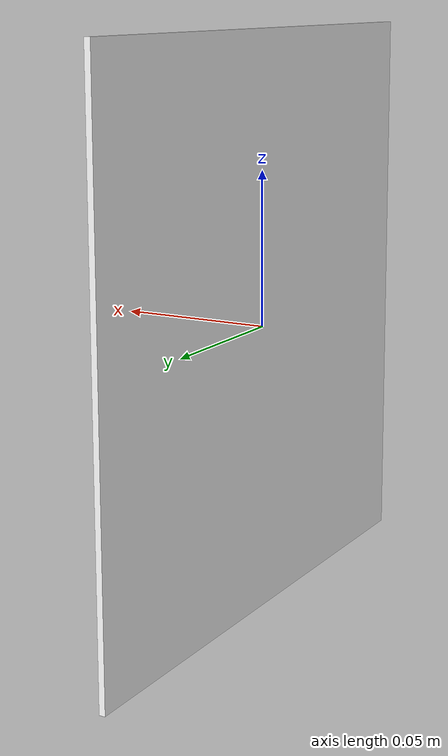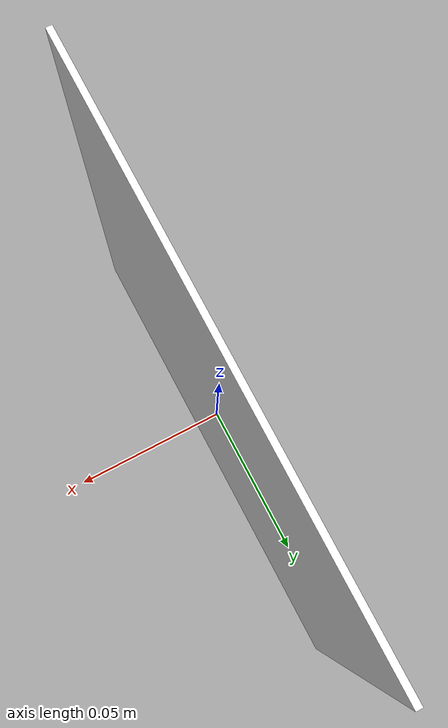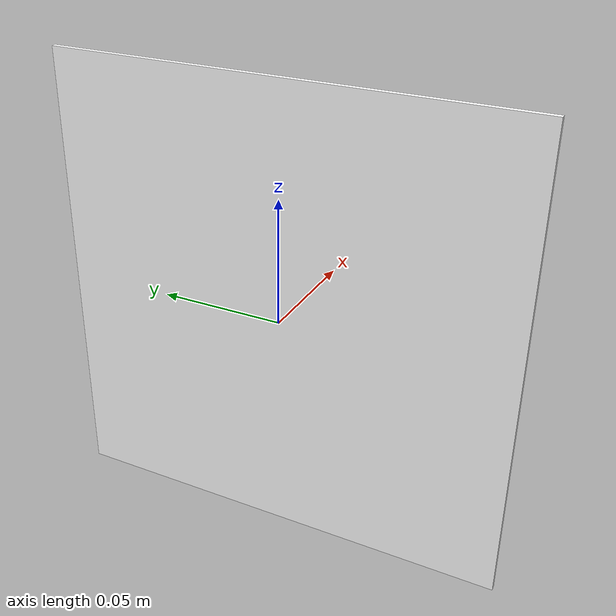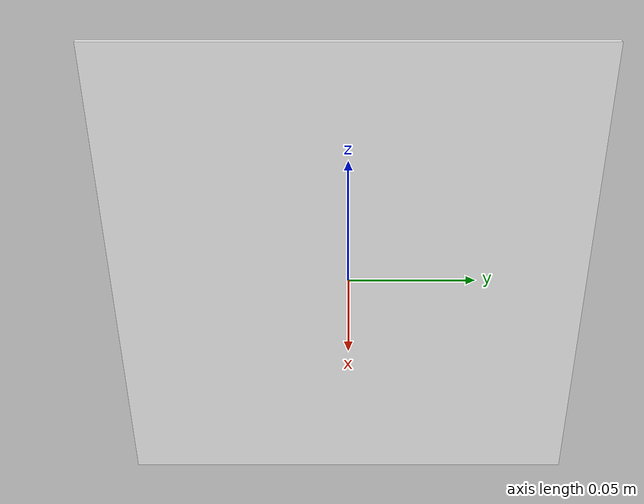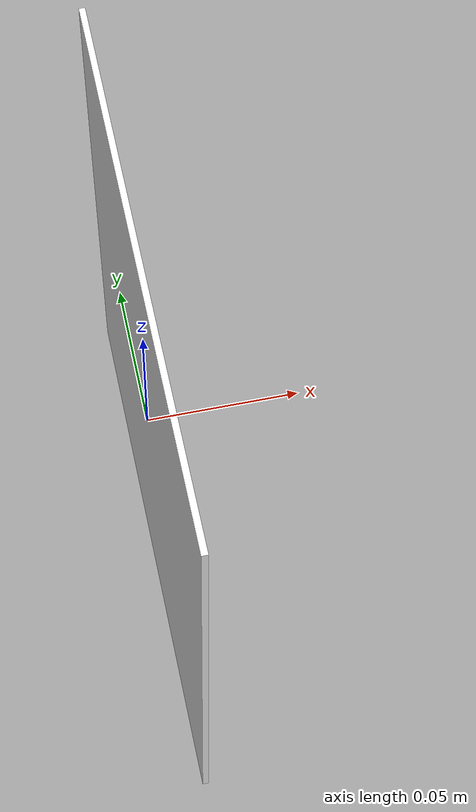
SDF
<sdf version="1.8">
  <model name="field_marker_2">
    <static>true</static>
    <link name="field_marker_2_link">
      <collision name="field_marker_2_collision">
        <geometry>
          <box>
            <size>0.002 0.1875 0.1875</size>
          </box>
        </geometry>
      </collision>
      <visual name="field_marker_2_visual">
        <geometry>
          <box>
            <size>0.002 0.1875 0.1875</size>
          </box>
        </geometry>
        <material>
          <ambient>1 1 1 1</ambient>
          <diffuse>1 1 1 1</diffuse>
          <specular>0 0 0 1</specular>
          <emissive>1 1 1 1</emissive>
          <pbr>
            <metal>
              <albedo_map>model://field_marker_2/materials/textures/field_marker_2.png</albedo_map>
              <emissive_map>model://field_marker_2/materials/textures/field_marker_2.png</emissive_map>
            </metal>
          </pbr>
        </material>
      </visual>
    </link>
  </model>
</sdf>
